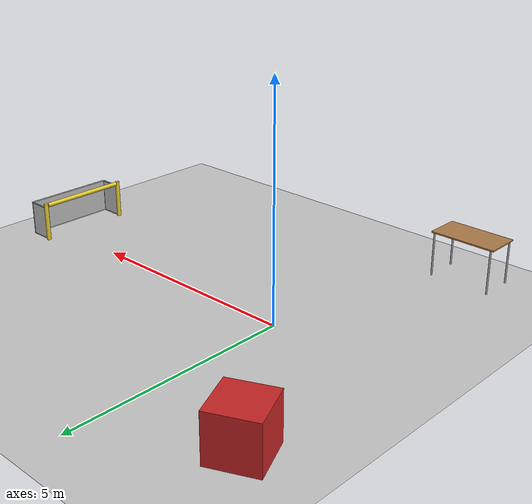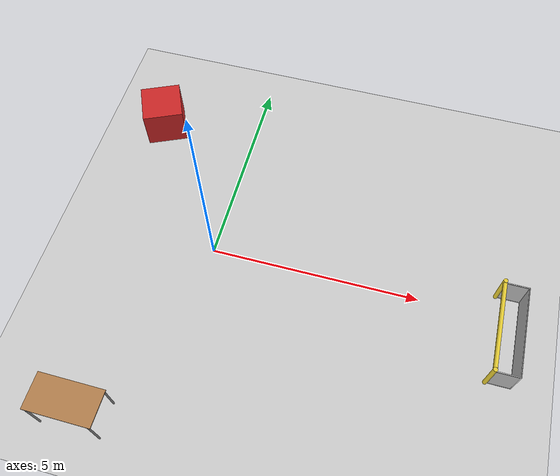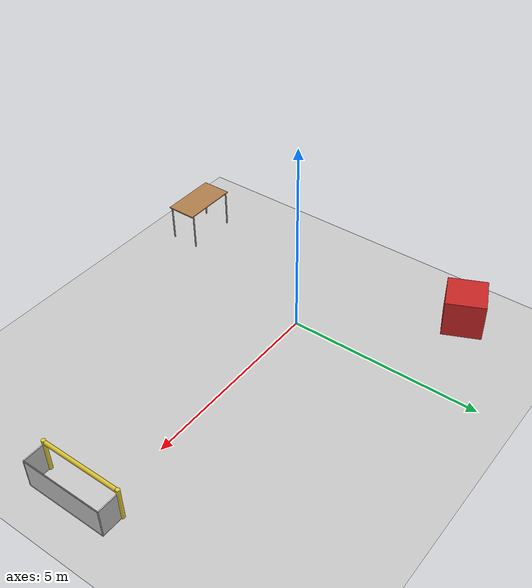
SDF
<sdf version="1.7">
 <world name="default">
  <light name="sun" type="directional">
   <pose>0 0 10 0 -0 0</pose>
   <diffuse>0.8 0.8 0.8 1</diffuse>
   <specular>0.2 0.2 0.2 1</specular>
   <attenuation>
    <range>1000</range>
    <constant>0.9</constant>
    <linear>0.01</linear>
    <quadratic>0.001</quadratic>
   </attenuation>
   <direction>-0.5 0.1 -0.9</direction>
   <spot><inner_angle>0</inner_angle><outer_angle>0</outer_angle><falloff>0</falloff></spot>
  </light>
  <model name="ground_plane">
   <static>1</static>
   <link name="link">
    <collision name="collision">
     <geometry><plane><normal>0 0 1</normal><size>100 100</size></plane></geometry>
     <surface>
      <contact><collide_bitmask>65535</collide_bitmask></contact>
      <friction><ode><mu>100</mu><mu2>50</mu2></ode></friction>
     </surface>
    </collision>
    <visual name="visual">
     <cast_shadows>0</cast_shadows>
     <geometry><plane><normal>0 0 1</normal><size>100 100</size></plane></geometry>
     <material>
      <script><uri>file://media/materials/scripts/gazebo.material</uri><name>Gazebo/Grey</name></script>
     </material>
    </visual>
   </link>
  </model>
  <gravity>0 0 -9.8</gravity>
  <magnetic_field>6e-06 2.3e-05 -4.2e-05</magnetic_field>
  <atmosphere type="adiabatic"/>
  <physics type="ode">
   <max_step_size>0.001</max_step_size>
   <real_time_factor>1</real_time_factor>
   <real_time_update_rate>1000</real_time_update_rate>
  </physics>
  <scene><ambient>0.4 0.4 0.4 1</ambient><background>0.7 0.7 0.7 1</background><shadows>1</shadows></scene>
  <spherical_coordinates>
   <surface_model>EARTH_WGS84</surface_model>
   <latitude_deg>0</latitude_deg>
   <longitude_deg>0</longitude_deg>
   <elevation>0</elevation>
   <heading_deg>0</heading_deg>
  </spherical_coordinates>
  <model name="table">
   <static>1</static>
   <link name="link">
    <collision name="surface">
     <pose>0 0 1 0 -0 0</pose>
     <geometry><box><size>1.5 0.8 0.03</size></box></geometry>
     <surface><friction><ode><mu>0.6</mu><mu2>0.6</mu2></ode></friction></surface>
    </collision>
    <visual name="visual1">
     <pose>0 0 1 0 -0 0</pose>
     <geometry><box><size>1.5 0.8 0.03</size></box></geometry>
     <material>
      <script><uri>file://media/materials/scripts/gazebo.material</uri><name>Gazebo/Wood</name></script>
     </material>
    </visual>
    <collision name="front_left_leg">
     <pose>0.68 0.38 0.5 0 -0 0</pose>
     <geometry><cylinder><radius>0.02</radius><length>1</length></cylinder></geometry>
    </collision>
    <visual name="front_left_leg">
     <pose>0.68 0.38 0.5 0 -0 0</pose>
     <geometry><cylinder><radius>0.02</radius><length>1</length></cylinder></geometry>
     <material>
      <script><uri>file://media/materials/scripts/gazebo.material</uri><name>Gazebo/Grey</name></script>
     </material>
    </visual>
    <collision name="front_right_leg">
     <pose>0.68 -0.38 0.5 0 -0 0</pose>
     <geometry><cylinder><radius>0.02</radius><length>1</length></cylinder></geometry>
    </collision>
    <visual name="front_right_leg">
     <pose>0.68 -0.38 0.5 0 -0 0</pose>
     <geometry><cylinder><radius>0.02</radius><length>1</length></cylinder></geometry>
     <material>
      <script><uri>file://media/materials/scripts/gazebo.material</uri><name>Gazebo/Grey</name></script>
     </material>
    </visual>
    <collision name="back_right_leg">
     <pose>-0.68 -0.38 0.5 0 -0 0</pose>
     <geometry><cylinder><radius>0.02</radius><length>1</length></cylinder></geometry>
    </collision>
    <visual name="back_right_leg">
     <pose>-0.68 -0.38 0.5 0 -0 0</pose>
     <geometry><cylinder><radius>0.02</radius><length>1</length></cylinder></geometry>
     <material>
      <script><uri>file://media/materials/scripts/gazebo.material</uri><name>Gazebo/Grey</name></script>
     </material>
    </visual>
    <collision name="back_left_leg">
     <pose>-0.68 0.38 0.5 0 -0 0</pose>
     <geometry><cylinder><radius>0.02</radius><length>1</length></cylinder></geometry>
    </collision>
    <visual name="back_left_leg">
     <pose>-0.68 0.38 0.5 0 -0 0</pose>
     <geometry><cylinder><radius>0.02</radius><length>1</length></cylinder></geometry>
     <material>
      <script><uri>file://media/materials/scripts/gazebo.material</uri><name>Gazebo/Grey</name></script>
     </material>
    </visual>
   </link>
   <pose>-1.60244 -4.46184 0 0 -0 0</pose>
  </model>
  <model name="robocup_3d_goal">
   <static>1</static>
   <link name="left_post">
    <pose>0 1.05 0.45 0 -0 0</pose>
    <collision name="collision">
     <geometry><cylinder><radius>0.05</radius><length>0.9</length></cylinder></geometry>
    </collision>
    <visual name="visual">
     <geometry><cylinder><radius>0.05</radius><length>0.9</length></cylinder></geometry>
     <material>
      <script><uri>file://media/materials/scripts/gazebo.material</uri><name>Gazebo/ZincYellow</name></script>
     </material>
    </visual>
   </link>
   <link name="left_support_horiz_lower">
    <pose>0.3 1.05 0.01 0 -0 0</pose>
    <collision name="collision"><geometry><box><size>0.5 0.02 0.02</size></box></geometry></collision>
    <visual name="visual">
     <geometry><box><size>0.5 0.02 0.02</size></box></geometry>
     <material>
      <script><uri>file://media/materials/scripts/gazebo.material</uri><name>Gazebo/White</name></script>
     </material>
    </visual>
   </link>
   <link name="left_support_horiz_upper">
    <pose>0.3 1.05 0.79 0 -0 0</pose>
    <collision name="collision"><geometry><box><size>0.5 0.02 0.02</size></box></geometry></collision>
    <visual name="visual">
     <geometry><box><size>0.5 0.02 0.02</size></box></geometry>
     <material>
      <script><uri>file://media/materials/scripts/gazebo.material</uri><name>Gazebo/White</name></script>
     </material>
    </visual>
   </link>
   <link name="left_support_vertical">
    <pose>0.56 1.05 0.4 3.14159 1.57079 3.14159</pose>
    <collision name="collision"><geometry><box><size>0.8 0.02 0.02</size></box></geometry></collision>
    <visual name="visual">
     <geometry><box><size>0.8 0.02 0.02</size></box></geometry>
     <material>
      <script><uri>file://media/materials/scripts/gazebo.material</uri><name>Gazebo/White</name></script>
     </material>
    </visual>
   </link>
   <link name="right_support_horiz_lower">
    <pose>0.3 -1.05 0.01 0 -0 0</pose>
    <collision name="collision"><geometry><box><size>0.5 0.02 0.02</size></box></geometry></collision>
    <visual name="visual">
     <geometry><box><size>0.5 0.02 0.02</size></box></geometry>
     <material>
      <script><uri>file://media/materials/scripts/gazebo.material</uri><name>Gazebo/White</name></script>
     </material>
    </visual>
   </link>
   <link name="right_support_horiz_upper">
    <pose>0.3 -1.05 0.79 0 -0 0</pose>
    <collision name="collision"><geometry><box><size>0.5 0.02 0.02</size></box></geometry></collision>
    <visual name="visual">
     <geometry><box><size>0.5 0.02 0.02</size></box></geometry>
     <material>
      <script><uri>file://media/materials/scripts/gazebo.material</uri><name>Gazebo/White</name></script>
     </material>
    </visual>
   </link>
   <link name="right_support_vertical">
    <pose>0.56 -1.05 0.4 3.14159 1.57079 3.14159</pose>
    <collision name="collision"><geometry><box><size>0.8 0.02 0.02</size></box></geometry></collision>
    <visual name="visual">
     <geometry><box><size>0.8 0.02 0.02</size></box></geometry>
     <material>
      <script><uri>file://media/materials/scripts/gazebo.material</uri><name>Gazebo/White</name></script>
     </material>
    </visual>
   </link>
   <link name="center_support_horiz_lower">
    <pose>0.56 0 0.01 3.14159 1.57079 3.14159</pose>
    <collision name="collision"><geometry><box><size>0.02 2.08 0.02</size></box></geometry></collision>
    <visual name="visual">
     <geometry><box><size>0.02 2.08 0.02</size></box></geometry>
     <material>
      <script><uri>file://media/materials/scripts/gazebo.material</uri><name>Gazebo/White</name></script>
     </material>
    </visual>
   </link>
   <link name="center_support_horiz_upper">
    <pose>0.56 0 0.79 3.14159 1.57079 3.14159</pose>
    <collision name="collision"><geometry><box><size>0.02 2.08 0.02</size></box></geometry></collision>
    <visual name="visual">
     <geometry><box><size>0.02 2.08 0.02</size></box></geometry>
     <material>
      <script><uri>file://media/materials/scripts/gazebo.material</uri><name>Gazebo/White</name></script>
     </material>
    </visual>
   </link>
   <link name="right_post">
    <pose>0 -1.05 0.45 0 -0 0</pose>
    <collision name="collision">
     <geometry><cylinder><radius>0.05</radius><length>0.9</length></cylinder></geometry>
    </collision>
    <visual name="visual">
     <geometry><cylinder><radius>0.05</radius><length>0.9</length></cylinder></geometry>
     <material>
      <script><uri>file://media/materials/scripts/gazebo.material</uri><name>Gazebo/ZincYellow</name></script>
     </material>
    </visual>
   </link>
   <link name="crossbar">
    <pose>0 0 0.85 1.57 1.57 0</pose>
    <collision name="collision">
     <geometry><cylinder><radius>0.05</radius><length>2</length></cylinder></geometry>
    </collision>
    <visual name="visual">
     <geometry><cylinder><radius>0.05</radius><length>2</length></cylinder></geometry>
     <material>
      <script><uri>file://media/materials/scripts/gazebo.material</uri><name>Gazebo/ZincYellow</name></script>
     </material>
    </visual>
   </link>
   <link name="center_net">
    <pose>0.56 0 0.4 0 -0 0</pose>
    <collision name="collision"><geometry><box><size>0.01 2.1 0.8</size></box></geometry></collision>
    <visual name="visual">
     <geometry><box><size>0.01 2.1 0.8</size></box></geometry>
     <material>
      <script>
       <uri>model://robocup09_spl_field/materials/scripts/</uri>
       <uri>model://robocup09_spl_field/materials/textures/</uri>
       <name>RoboCup/Net</name>
      </script>
     </material>
    </visual>
   </link>
   <link name="left_net">
    <pose>0.3 1.05 0.4 0 -0 0</pose>
    <collision name="collision"><geometry><box><size>0.5 0.01 0.76</size></box></geometry></collision>
    <visual name="visual">
     <geometry><box><size>0.5 0.01 0.76</size></box></geometry>
     <material>
      <script>
       <uri>model://robocup09_spl_field/materials/scripts/</uri>
       <uri>model://robocup09_spl_field/materials/textures/</uri>
       <name>RoboCup/Net</name>
      </script>
     </material>
    </visual>
   </link>
   <link name="right_net">
    <pose>0.3 -1.05 0.4 0 -0 0</pose>
    <collision name="collision"><geometry><box><size>0.5 0.01 0.76</size></box></geometry></collision>
    <visual name="visual">
     <geometry><box><size>0.5 0.01 0.76</size></box></geometry>
     <material>
      <script>
       <uri>model://robocup09_spl_field/materials/scripts/</uri>
       <uri>model://robocup09_spl_field/materials/textures/</uri>
       <name>RoboCup/Net</name>
      </script>
     </material>
    </visual>
   </link>
   <pose>6.73592 -0.496206 0 0 -0 0</pose>
  </model>
  <model name="camera_model">
   <pose>0 0 8 3.14159 1.57079 -1.57079</pose>
   <static>1</static>
   <link name="camera_link">
    <sensor name="camera1" type="camera">
     <update_rate>100</update_rate>
     <visualize>1</visualize>
     <camera name="head">
      <horizontal_fov>1.39626</horizontal_fov>
      <image><width>800</width><height>800</height><format>R8G8B8</format></image>
      <clip><near>0.02</near><far>300</far></clip>
      <noise><type>gaussian</type><mean>0</mean><stddev>0.007</stddev></noise>
     </camera>
     <plugin name="camera_controller" filename="libgazebo_ros_camera.so">
      <ros>
       <namespace>demo_cam</namespace>
       <argument>image_raw:=image_demo</argument>
       <argument>camera_info:=camera_info_demo</argument>
      </ros>
     </plugin>
    </sensor>
   </link>
  </model>
  <model name="unit_box">
   <pose>-2.43309 3.3229 0.499995 1e-05 -0 0.425838</pose>
   <link name="link">
    <inertial>
     <mass>1</mass>
     <inertia>
      <ixx>0.166667</ixx>
      <ixy>0</ixy>
      <ixz>0</ixz>
      <iyy>0.166667</iyy>
      <iyz>0</iyz>
      <izz>0.166667</izz>
     </inertia>
    </inertial>
    <collision name="collision"><geometry><box><size>1 1 1</size></box></geometry></collision>
    <visual name="visual">
     <geometry><box><size>1 1 1</size></box></geometry>
     <material>
      <script><name>Gazebo/Red</name><uri>file://media/materials/scripts/gazebo.material</uri></script>
     </material>
    </visual>
   </link>
  </model>
 </world>
</sdf>
